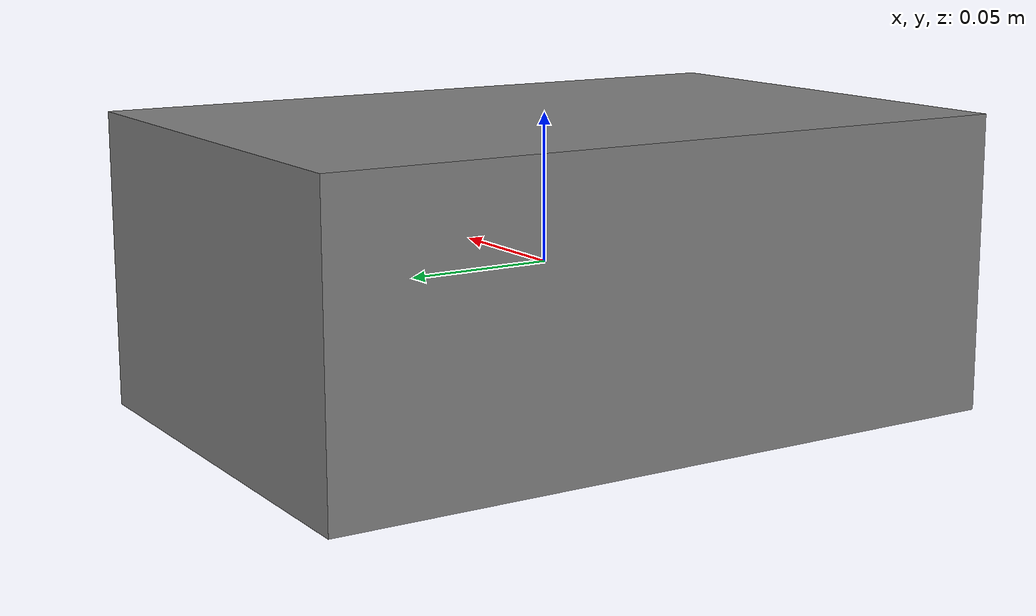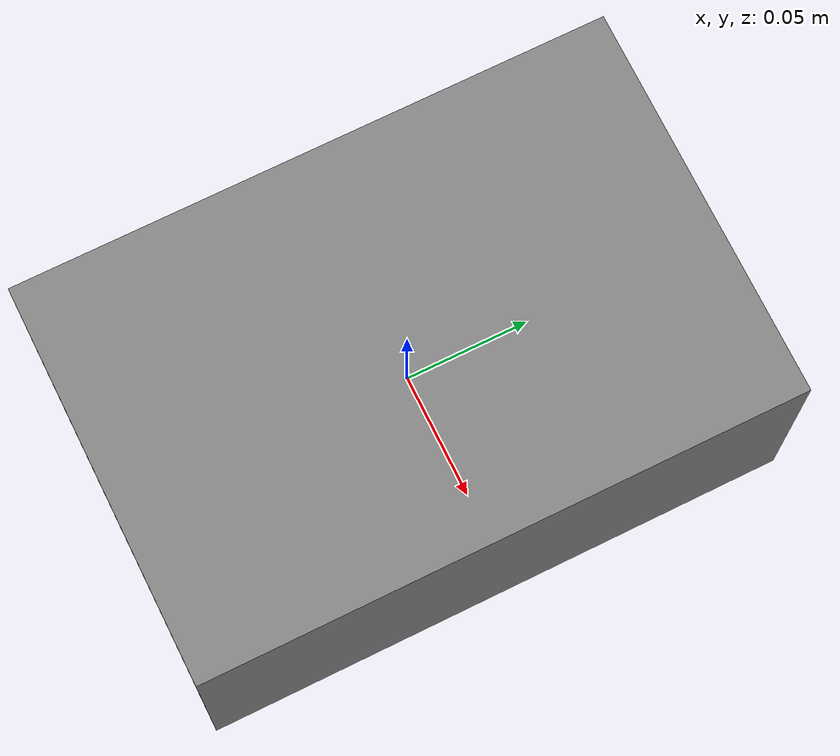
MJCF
<mujoco model="sweep_box_box_mg">
  <worldbody>
    <body name="a"><freejoint/><geom name="ga" type="box" size="0.08 0.12 0.05" margin="0.02" gap="0.03" mass="1"/></body>
    <body name="b"><freejoint/><geom name="gb" type="box" size="0.08 0.12 0.05" margin="0.02" gap="0.03" mass="1"/></body>
  </worldbody>
</mujoco>
